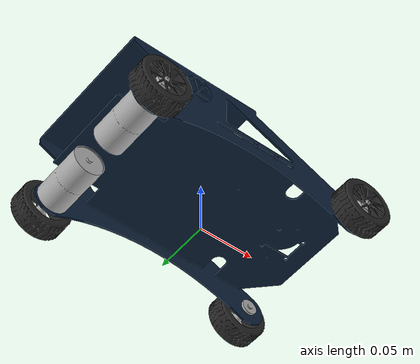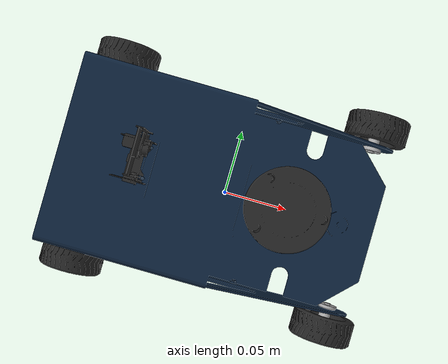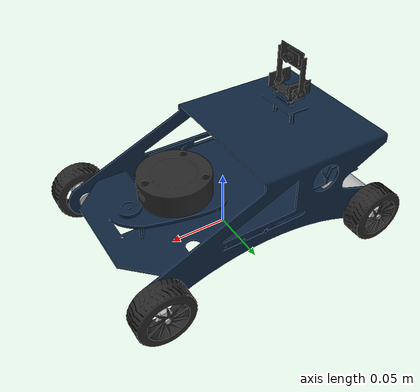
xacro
<?xml version="1.0" ?>
<robot name="mach1" xmlns:xacro="http://www.ros.org/wiki/xacro">

<xacro:include filename="$(find mach1_simulation)/urdf/materials.xacro" />
<xacro:include filename="$(find mach1_simulation)/urdf/mach1.trans" />
<xacro:include filename="$(find mach1_simulation)/urdf/mach1.gazebo" />
<link name="base_link">
  <inertial>
    <origin xyz="-0.01257059513659561 -6.749337095876954e-06 0.05456277365767092" rpy="0 0 0"/>
    <mass value="0.27796549982773394"/>
    <inertia ixx="0.0007" iyy="0.001225" izz="0.001622" ixy="2e-06" iyz="-1e-06" ixz="0.000161"/>
  </inertial>
  <visual>
    <origin xyz="0 0 0" rpy="0 0 0"/>
    <geometry>
      <mesh filename="package://mach1_simulation/meshes/base_link.stl" scale="0.001 0.001 0.001"/>
    </geometry>
    <material name="bright_blue"/>
  </visual>
  <collision>
    <origin xyz="0 0 0" rpy="0 0 0"/>
    <geometry>
      <mesh filename="package://mach1_simulation/meshes/base_link.stl" scale="0.001 0.001 0.001"/>
    </geometry>
  </collision>
</link>

<link name="left_motor_link_1">
  <inertial>
    <origin xyz="-1.1673019370550541e-08 -0.023515437461306535 4.727200079990279e-08" rpy="0 0 0"/>
    <mass value="0.26354923062867747"/>
    <inertia ixx="8.2e-05" iyy="2.6e-05" izz="8.2e-05" ixy="0.0" iyz="-0.0" ixz="-0.0"/>
  </inertial>
  <visual>
    <origin xyz="0.098425 -0.063437 -0.022977" rpy="0 0 0"/>
    <geometry>
      <mesh filename="package://mach1_simulation/meshes/left_motor_link_1.stl" scale="0.001 0.001 0.001"/>
    </geometry>
    <material name="silver"/>
  </visual>
  <collision>
    <origin xyz="0.098425 -0.063437 -0.022977" rpy="0 0 0"/>
    <geometry>
      <mesh filename="package://mach1_simulation/meshes/left_motor_link_1.stl" scale="0.001 0.001 0.001"/>
    </geometry>
  </collision>
</link>

<link name="back_left_wheel_link_1">
  <inertial>
    <origin xyz="-5.8024360941044684e-08 -0.007668076255200537 1.058822429039763e-09" rpy="0 0 0"/>
    <mass value="0.022862762421987773"/>
    <inertia ixx="5e-06" iyy="9e-06" izz="5e-06" ixy="-0.0" iyz="-0.0" ixz="-0.0"/>
  </inertial>
  <visual>
    <origin xyz="0.098425 -0.085609 -0.022977" rpy="0 0 0"/>
    <geometry>
      <mesh filename="package://mach1_simulation/meshes/back_left_wheel_link_1.stl" scale="0.001 0.001 0.001"/>
    </geometry>
    <material name="light_black"/>
  </visual>
  <collision>
    <origin xyz="0.098425 -0.085609 -0.022977" rpy="0 0 0"/>
    <geometry>
      <mesh filename="package://mach1_simulation/meshes/back_left_wheel_link_1.stl" scale="0.001 0.001 0.001"/>
    </geometry>
  </collision>
</link>

<link name="right_motor_link_1">
  <inertial>
    <origin xyz="-1.1673019370550541e-08 0.025102437461306568 4.727200079990279e-08" rpy="0 0 0"/>
    <mass value="0.26354923062867747"/>
    <inertia ixx="8.2e-05" iyy="2.6e-05" izz="8.2e-05" ixy="-0.0" iyz="0.0" ixz="-0.0"/>
  </inertial>
  <visual>
    <origin xyz="0.098425 0.065024 -0.022977" rpy="0 0 0"/>
    <geometry>
      <mesh filename="package://mach1_simulation/meshes/right_motor_link_1.stl" scale="0.001 0.001 0.001"/>
    </geometry>
    <material name="silver"/>
  </visual>
  <collision>
    <origin xyz="0.098425 0.065024 -0.022977" rpy="0 0 0"/>
    <geometry>
      <mesh filename="package://mach1_simulation/meshes/right_motor_link_1.stl" scale="0.001 0.001 0.001"/>
    </geometry>
  </collision>
</link>

<link name="back_right_wheel_link_1">
  <inertial>
    <origin xyz="-4.022446584150963e-09 0.007668057793591393 2.022708084359337e-09" rpy="0 0 0"/>
    <mass value="0.02286234064013841"/>
    <inertia ixx="5e-06" iyy="9e-06" izz="5e-06" ixy="-0.0" iyz="0.0" ixz="-0.0"/>
  </inertial>
  <visual>
    <origin xyz="0.098425 0.085609 -0.022977" rpy="0 0 0"/>
    <geometry>
      <mesh filename="package://mach1_simulation/meshes/back_right_wheel_link_1.stl" scale="0.001 0.001 0.001"/>
    </geometry>
    <material name="light_black"/>
  </visual>
  <collision>
    <origin xyz="0.098425 0.085609 -0.022977" rpy="0 0 0"/>
    <geometry>
      <mesh filename="package://mach1_simulation/meshes/back_right_wheel_link_1.stl" scale="0.001 0.001 0.001"/>
    </geometry>
  </collision>
</link>

<link name="left_axel_link_1">
  <inertial>
    <origin xyz="2.0695760315214695e-07 0.00912067298665084 8.381127491671747e-07" rpy="0 0 0"/>
    <mass value="0.014864944426974978"/>
    <inertia ixx="1e-06" iyy="0.0" izz="1e-06" ixy="0.0" iyz="0.0" ixz="0.0"/>
  </inertial>
  <visual>
    <origin xyz="-0.098425 -0.063437 -0.022977" rpy="0 0 0"/>
    <geometry>
      <mesh filename="package://mach1_simulation/meshes/left_axel_link_1.stl" scale="0.001 0.001 0.001"/>
    </geometry>
    <material name="silver"/>
  </visual>
  <collision>
    <origin xyz="-0.098425 -0.063437 -0.022977" rpy="0 0 0"/>
    <geometry>
      <mesh filename="package://mach1_simulation/meshes/left_axel_link_1.stl" scale="0.001 0.001 0.001"/>
    </geometry>
  </collision>
</link>

<link name="front_left_wheel_link_1">
  <inertial>
    <origin xyz="-4.520254250073297e-08 -0.007668062103570364 -2.671110208019023e-08" rpy="0 0 0"/>
    <mass value="0.02286192416725644"/>
    <inertia ixx="5e-06" iyy="9e-06" izz="5e-06" ixy="-0.0" iyz="-0.0" ixz="0.0"/>
  </inertial>
  <visual>
    <origin xyz="-0.098425 -0.085609 -0.022977" rpy="0 0 0"/>
    <geometry>
      <mesh filename="package://mach1_simulation/meshes/front_left_wheel_link_1.stl" scale="0.001 0.001 0.001"/>
    </geometry>
    <material name="light_black"/>
  </visual>
  <collision>
    <origin xyz="-0.098425 -0.085609 -0.022977" rpy="0 0 0"/>
    <geometry>
      <mesh filename="package://mach1_simulation/meshes/front_left_wheel_link_1.stl" scale="0.001 0.001 0.001"/>
    </geometry>
  </collision>
</link>

<link name="right_axel_link_1">
  <inertial>
    <origin xyz="2.0695760313826916e-07 -0.009120672986650827 8.381127491637053e-07" rpy="0 0 0"/>
    <mass value="0.014864944426974976"/>
    <inertia ixx="1e-06" iyy="0.0" izz="1e-06" ixy="-0.0" iyz="-0.0" ixz="0.0"/>
  </inertial>
  <visual>
    <origin xyz="-0.098425 0.063437 -0.022977" rpy="0 0 0"/>
    <geometry>
      <mesh filename="package://mach1_simulation/meshes/right_axel_link_1.stl" scale="0.001 0.001 0.001"/>
    </geometry>
    <material name="silver"/>
  </visual>
  <collision>
    <origin xyz="-0.098425 0.063437 -0.022977" rpy="0 0 0"/>
    <geometry>
      <mesh filename="package://mach1_simulation/meshes/right_axel_link_1.stl" scale="0.001 0.001 0.001"/>
    </geometry>
  </collision>
</link>

<link name="front_right_wheel_link_1">
  <inertial>
    <origin xyz="-4.815559548343451e-09 0.00766808105796124 -5.901404989683279e-10" rpy="0 0 0"/>
    <mass value="0.02286228381417235"/>
    <inertia ixx="5e-06" iyy="9e-06" izz="5e-06" ixy="-0.0" iyz="-0.0" ixz="0.0"/>
  </inertial>
  <visual>
    <origin xyz="-0.098425 0.085609 -0.022977" rpy="0 0 0"/>
    <geometry>
      <mesh filename="package://mach1_simulation/meshes/front_right_wheel_link_1.stl" scale="0.001 0.001 0.001"/>
    </geometry>
    <material name="light_black"/>
  </visual>
  <collision>
    <origin xyz="-0.098425 0.085609 -0.022977" rpy="0 0 0"/>
    <geometry>
      <mesh filename="package://mach1_simulation/meshes/front_right_wheel_link_1.stl" scale="0.001 0.001 0.001"/>
    </geometry>
  </collision>
</link>

<link name="lidar_link_1">
  <inertial>
    <origin xyz="-2.6784463419346483e-05 -1.8448607882002178e-06 0.00826050971110421" rpy="0 0 0"/>
    <mass value="0.08969534212948989"/>
    <inertia ixx="2.4e-05" iyy="2.4e-05" izz="4e-05" ixy="0.0" iyz="0.0" ixz="0.0"/>
  </inertial>
  <visual>
    <origin xyz="-0.044673 -0.000242 -0.052698" rpy="0 0 0"/>
    <geometry>
      <mesh filename="package://mach1_simulation/meshes/lidar_link_1.stl" scale="0.001 0.001 0.001"/>
    </geometry>
    <material name="light_black"/>
  </visual>
  <collision>
    <origin xyz="-0.044673 -0.000242 -0.052698" rpy="0 0 0"/>
    <geometry>
      <mesh filename="package://mach1_simulation/meshes/lidar_link_1.stl" scale="0.001 0.001 0.001"/>
    </geometry>
  </collision>
</link>

<link name="camera_link_1">
  <inertial>
    <origin xyz="0.0017247609899610633 -4.844296107829604e-08 -4.908169510264848e-07" rpy="0 0 0"/>
    <mass value="0.0001446922327064572"/>
    <inertia ixx="0.0" iyy="0.0" izz="0.0" ixy="0.0" iyz="-0.0" ixz="0.0"/>
  </inertial>
  <visual>
    <origin xyz="0.052708 -0.010469 -0.148286" rpy="0 0 0"/>
    <geometry>
      <mesh filename="package://mach1_simulation/meshes/camera_link_1.stl" scale="0.001 0.001 0.001"/>
    </geometry>
    <material name="light_black"/>
  </visual>
  <collision>
    <origin xyz="0.052708 -0.010469 -0.148286" rpy="0 0 0"/>
    <geometry>
      <mesh filename="package://mach1_simulation/meshes/camera_link_1.stl" scale="0.001 0.001 0.001"/>
    </geometry>
  </collision>
</link>

<link name="camera_servo_link_1">
  <inertial>
    <origin xyz="7.875210781579933e-05 -0.013216489176342328 0.020116135219434145" rpy="0 0 0"/>
    <mass value="0.0008288338046232635"/>
    <inertia ixx="0.0" iyy="0.0" izz="0.0" ixy="-0.0" iyz="-0.0" ixz="-0.0"/>
  </inertial>
  <visual>
    <origin xyz="0.055848 -0.022042 -0.120843" rpy="0 0 0"/>
    <geometry>
      <mesh filename="package://mach1_simulation/meshes/camera_servo_link_1.stl" scale="0.001 0.001 0.001"/>
    </geometry>
    <material name="light_black"/>
  </visual>
  <collision>
    <origin xyz="0.055848 -0.022042 -0.120843" rpy="0 0 0"/>
    <geometry>
      <mesh filename="package://mach1_simulation/meshes/camera_servo_link_1.stl" scale="0.001 0.001 0.001"/>
    </geometry>
  </collision>
</link>

<link name="servo_connection_link_1">
  <inertial>
    <origin xyz="1.4196507928943003e-06 0.005593295972367044 -1.0830995605948246e-07" rpy="0 0 0"/>
    <mass value="0.00026402510298988033"/>
    <inertia ixx="0.0" iyy="0.0" izz="0.0" ixy="-0.0" iyz="-0.0" ixz="-0.0"/>
  </inertial>
  <visual>
    <origin xyz="0.055848 -0.010201 -0.120843" rpy="0 0 0"/>
    <geometry>
      <mesh filename="package://mach1_simulation/meshes/servo_connection_link_1.stl" scale="0.001 0.001 0.001"/>
    </geometry>
    <material name="light_black"/>
  </visual>
  <collision>
    <origin xyz="0.055848 -0.010201 -0.120843" rpy="0 0 0"/>
    <geometry>
      <mesh filename="package://mach1_simulation/meshes/servo_connection_link_1.stl" scale="0.001 0.001 0.001"/>
    </geometry>
  </collision>
</link>

<link name="led_servo_link_1">
  <inertial>
    <origin xyz="-0.0006249344811125879 0.004651981950430245 0.006942682838997669" rpy="0 0 0"/>
    <mass value="0.0018204441194599923"/>
    <inertia ixx="0.0" iyy="0.0" izz="0.0" ixy="0.0" iyz="-0.0" ixz="0.0"/>
  </inertial>
  <visual>
    <origin xyz="0.059026 -0.004197 -0.111884" rpy="0 0 0"/>
    <geometry>
      <mesh filename="package://mach1_simulation/meshes/led_servo_link_1.stl" scale="0.001 0.001 0.001"/>
    </geometry>
    <material name="light_black"/>
  </visual>
  <collision>
    <origin xyz="0.059026 -0.004197 -0.111884" rpy="0 0 0"/>
    <geometry>
      <mesh filename="package://mach1_simulation/meshes/led_servo_link_1.stl" scale="0.001 0.001 0.001"/>
    </geometry>
  </collision>
</link>

<link name="right_led_bulb_link_1">
  <inertial>
    <origin xyz="0.0015254212710200526 -2.6323828997316945e-07 -5.000000026095242e-07" rpy="0 0 0"/>
    <mass value="1.2830654939896124e-05"/>
    <inertia ixx="0.0" iyy="0.0" izz="0.0" ixy="-0.0" iyz="0.0" ixz="0.0"/>
  </inertial>
  <visual>
    <origin xyz="0.053914 0.005666 -0.112237" rpy="0 0 0"/>
    <geometry>
      <mesh filename="package://mach1_simulation/meshes/right_led_bulb_link_1.stl" scale="0.001 0.001 0.001"/>
    </geometry>
    <material name="clear"/>
  </visual>
  <collision>
    <origin xyz="0.053914 0.005666 -0.112237" rpy="0 0 0"/>
    <geometry>
      <mesh filename="package://mach1_simulation/meshes/right_led_bulb_link_1.stl" scale="0.001 0.001 0.001"/>
    </geometry>
  </collision>
</link>

<link name="left_led_bulb_link_1">
  <inertial>
    <origin xyz="0.001525449171436842 1.7538595697627613e-07 -5.000000021654349e-07" rpy="0 0 0"/>
    <mass value="1.2836334343820447e-05"/>
    <inertia ixx="0.0" iyy="0.0" izz="0.0" ixy="-0.0" iyz="0.0" ixz="0.0"/>
  </inertial>
  <visual>
    <origin xyz="0.053914 -0.014193 -0.112237" rpy="0 0 0"/>
    <geometry>
      <mesh filename="package://mach1_simulation/meshes/left_led_bulb_link_1.stl" scale="0.001 0.001 0.001"/>
    </geometry>
    <material name="clear"/>
  </visual>
  <collision>
    <origin xyz="0.053914 -0.014193 -0.112237" rpy="0 0 0"/>
    <geometry>
      <mesh filename="package://mach1_simulation/meshes/left_led_bulb_link_1.stl" scale="0.001 0.001 0.001"/>
    </geometry>
  </collision>
</link>

<joint name="left_motor_joint" type="fixed">
  <origin xyz="-0.098425 0.063437 0.022977" rpy="0 0 0"/>
  <parent link="base_link"/>
  <child link="left_motor_link_1"/>
</joint>

<joint name="back_left_wheel_joint" type="continuous">
  <origin xyz="0.0 0.022172 0.0" rpy="0 0 0"/>
  <parent link="left_motor_link_1"/>
  <child link="back_left_wheel_link_1"/>
  <axis xyz="0.0 1.0 0.0"/>
</joint>

<joint name="right_motor_joint" type="fixed">
  <origin xyz="-0.098425 -0.065024 0.022977" rpy="0 0 0"/>
  <parent link="base_link"/>
  <child link="right_motor_link_1"/>
</joint>

<joint name="back_right_wheel_joint" type="continuous">
  <origin xyz="0.0 -0.020585 0.0" rpy="0 0 0"/>
  <parent link="right_motor_link_1"/>
  <child link="back_right_wheel_link_1"/>
  <axis xyz="0.0 1.0 0.0"/>
</joint>

<joint name="left_axel_joint" type="fixed">
  <origin xyz="0.098425 0.063437 0.022977" rpy="0 0 0"/>
  <parent link="base_link"/>
  <child link="left_axel_link_1"/>
</joint>

<joint name="front_left_wheel_joint" type="continuous">
  <origin xyz="0.0 0.022172 0.0" rpy="0 0 0"/>
  <parent link="left_axel_link_1"/>
  <child link="front_left_wheel_link_1"/>
  <axis xyz="0.0 -1.0 0.0"/>
</joint>

<joint name="right_axel_joint" type="fixed">
  <origin xyz="0.098425 -0.063437 0.022977" rpy="0 0 0"/>
  <parent link="base_link"/>
  <child link="right_axel_link_1"/>
</joint>

<joint name="front_right_wheel_joint" type="continuous">
  <origin xyz="0.0 -0.022172 0.0" rpy="0 0 0"/>
  <parent link="right_axel_link_1"/>
  <child link="front_right_wheel_link_1"/>
  <axis xyz="0.0 -1.0 0.0"/>
</joint>

<joint name="lidar_link_joint" type="fixed">
  <origin xyz="0.044673 0.000242 0.052698" rpy="0 0 0"/>
  <parent link="base_link"/>
  <child link="lidar_link_1"/>
</joint>

<joint name="camera_joint" type="fixed">
  <origin xyz="0.00314 -0.011573 0.027443" rpy="0 0 0"/>
  <parent link="camera_servo_link_1"/>
  <child link="camera_link_1"/>
</joint>

<joint name="servo_connection_to_camera_joint" type="revolute">
  <origin xyz="0.0 0.011841 0.0" rpy="0 0 0"/>
  <parent link="servo_connection_link_1"/>
  <child link="camera_servo_link_1"/>
  <axis xyz="0.0 -1.0 -0.0"/>
  <limit upper="1.134464" lower="-1.134464" effort="100" velocity="100"/>
</joint>

<joint name="led_to_servo_connection_joint" type="fixed">
  <origin xyz="0.003178 0.006004 0.008959" rpy="0 0 0"/>
  <parent link="led_servo_link_1"/>
  <child link="servo_connection_link_1"/>
</joint>

<joint name="led_servo_joint" type="revolute">
  <origin xyz="-0.059026 0.004197 0.111884" rpy="0 0 0"/>
  <parent link="base_link"/>
  <child link="led_servo_link_1"/>
  <axis xyz="0.0 0.0 1.0"/>
  <limit upper="1.570796" lower="-1.570796" effort="100" velocity="100"/>
</joint>

<joint name="right_led_bulb_joint" type="fixed">
  <origin xyz="0.005112 -0.009863 0.000353" rpy="0 0 0"/>
  <parent link="led_servo_link_1"/>
  <child link="right_led_bulb_link_1"/>
</joint>

<joint name="left_led_bulb_joint" type="fixed">
  <origin xyz="0.005112 0.009996 0.000353" rpy="0 0 0"/>
  <parent link="led_servo_link_1"/>
  <child link="left_led_bulb_link_1"/>
</joint>

</robot>

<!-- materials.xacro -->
<robot name="mach1" xmlns:xacro="http://www.ros.org/wiki/xacro" >

<material name="bright_blue">
  <color rgba="0.053 0.139 0.238 1.000"/>
</material>

<material name="clear">
  <color rgba="0.750 0.750 0.750 0.2"/>
</material>

<material name="silver">
  <color rgba="0.700 0.700 0.700 1.000"/>
</material>

<material name="light_black">
  <color rgba="0.150 0.150 0.150 1.000"/>
</material>

</robot>

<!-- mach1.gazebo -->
<robot name="mach1" xmlns:xacro="http://www.ros.org/wiki/xacro" >

<xacro:property name="SkyBlue"          value="Gazebo/SkyBlue"/>
<xacro:property name="Grey"           value="Gazebo/Grey"/>
<xacro:property name="Black"            value="Gazebo/Black"/>
<xacro:property name="GreyTransparent"  value="Gazebo/GreyTransparent"/>

<gazebo>
  <plugin name="control" filename="libgazebo_ros_control.so"/>
</gazebo>
<gazebo reference="base_link">
  <material>${SkyBlue}</material>
  <mu1>0.2</mu1>
  <mu2>0.2</mu2>
  <selfCollide>true</selfCollide>
  <gravity>true</gravity>
</gazebo>

<gazebo reference="left_motor_link_1">
  <material>${Grey}</material>
  <mu1>0.2</mu1>
  <mu2>0.2</mu2>
  <selfCollide>true</selfCollide>
</gazebo>

<gazebo reference="back_left_wheel_link_1">
  <material>${Black}</material>
  <mu1>0.6</mu1>
  <mu2>0.6</mu2>
  <selfCollide>true</selfCollide>
</gazebo>

<gazebo reference="right_motor_link_1">
  <material>${Grey}</material>
  <mu1>100</mu1>
  <mu2>100</mu2>
  <selfCollide>true</selfCollide>
</gazebo>

<gazebo reference="back_right_wheel_link_1">
  <material>${Black}</material>
  <mu1>0.6</mu1>
  <mu2>0.6</mu2>
  <selfCollide>true</selfCollide>
</gazebo>

<gazebo reference="left_axel_link_1">
  <material>${Grey}</material>
  <mu1>100</mu1>
  <mu2>100</mu2>
  <selfCollide>true</selfCollide>
</gazebo>

<gazebo reference="front_left_wheel_link_1">
  <material>${Black}</material>
  <mu1>0.05</mu1>
  <mu2>0.05</mu2>
  <selfCollide>true</selfCollide>
</gazebo>

<gazebo reference="right_axel_link_1">
  <material>${Grey}</material>
  <mu1>100</mu1>
  <mu2>100</mu2>
  <selfCollide>true</selfCollide>
</gazebo>

<gazebo reference="front_right_wheel_link_1">
  <material>${Black}</material>
  <mu1>0.05</mu1>
  <mu2>0.05</mu2>
  <selfCollide>true</selfCollide>
</gazebo>

<gazebo reference="lidar_link_1">
  <material>${Black}</material>
  <mu1>100</mu1>
  <mu2>100</mu2>
  <selfCollide>true</selfCollide>
</gazebo>

<gazebo reference="camera_link_1">
  <material>${Black}</material>
  <mu1>100</mu1>
  <mu2>100</mu2>
  <selfCollide>true</selfCollide>
</gazebo>

<gazebo reference="camera_servo_link_1">
  <material>${Black}</material>
  <mu1>0.2</mu1>
  <mu2>0.2</mu2>
  <selfCollide>true</selfCollide>
</gazebo>

<gazebo reference="servo_connection_link_1">
  <material>${Black}</material>
  <mu1>0.2</mu1>
  <mu2>0.2</mu2>
  <selfCollide>true</selfCollide>
</gazebo>

<gazebo reference="led_servo_link_1">
  <material>${Black}</material>
  <mu1>0.2</mu1>
  <mu2>0.2</mu2>
  <selfCollide>true</selfCollide>
</gazebo>

<gazebo reference="right_led_bulb_link_1">
  <material>${GreyTransparent}</material>
  <mu1>100</mu1>
  <mu2>100</mu2>
  <selfCollide>true</selfCollide>
</gazebo>

<gazebo reference="left_led_bulb_link_1">
  <material>${GreyTransparent}</material>
  <mu1>100</mu1>
  <mu2>100</mu2>
  <selfCollide>true</selfCollide>
</gazebo>

<!-- Camera -->
<gazebo reference="camera_link_1">
  <sensor type="camera" name="camera1">
    <update_rate>30.0</update_rate>
    <camera name="head">
      <horizontal_fov>1.3962634</horizontal_fov>
      <image>
        <width>800</width>
        <height>800</height>
        <format>R8G8B8</format>
      </image>
      <clip>
        <near>0.02</near>
        <far>300</far>
      </clip>
      <noise>
        <type>gaussian</type>
        <!-- Noise is sampled independently per pixel on each frame.
              That pixel's noise value is added to each of its color
              channels, which at that point lie in the range [0,1]. -->
        <mean>0.0</mean>
        <stddev>0.007</stddev>
      </noise>
    </camera>
    <plugin name="camera_controller" filename="libgazebo_ros_camera.so">
      <alwaysOn>true</alwaysOn>
      <updateRate>0.0</updateRate>
      <cameraName>/camera_link_1</cameraName>
      <imageTopicName>image_raw</imageTopicName>
      <cameraInfoTopicName>camera_info</cameraInfoTopicName>
      <frameName>camera_link_1</frameName>
      <hackBaseline>0.07</hackBaseline>
      <distortionK1>0.0</distortionK1>
      <distortionK2>0.0</distortionK2>
      <distortionK3>0.0</distortionK3>
      <distortionT1>0.0</distortionT1>
      <distortionT2>0.0</distortionT2>
    </plugin>
  </sensor>
</gazebo>

<!--LiDAR -->
<gazebo reference="lidar_link_1">
  <sensor type="gpu_ray" name="head_hokuyo_sensor">
    <pose>0 0 0 0 0 0</pose>
    <visualize>false</visualize>
    <update_rate>40</update_rate>
    <ray>
      <scan>
        <horizontal>
          <samples>720</samples>
          <resolution>1</resolution>
          <min_angle>-1.570796</min_angle>
          <max_angle>1.570796</max_angle>
        </horizontal>
      </scan>
      <range>
        <min>0.10</min>
        <max>30.0</max>
        <resolution>0.01</resolution>
      </range>
      <noise>
        <type>gaussian</type>
        <mean>0.0</mean>
        <stddev>0.01</stddev>
      </noise>
    </ray>
    <plugin name="gazebo_ros_head_hokuyo_controller" filename="libgazebo_ros_gpu_laser.so">
      <topicName>/scan</topicName>
      <frameName>lidar_link_1</frameName>
    </plugin>
  </sensor>
</gazebo>

<!-- Skid Steering Drive -->
<gazebo>
  <plugin name="skid_steer_drive_controller" filename="libgazebo_ros_skid_steer_drive.so">
    <updateRate>100.0</updateRate>
    <robotNamespace>/</robotNamespace>
    <leftFrontJoint>front_left_wheel_joint</leftFrontJoint>
    <rightFrontJoint>front_right_wheel_joint</rightFrontJoint>
    <leftRearJoint>back_left_wheel_joint</leftRearJoint>
    <rightRearJoint>back_right_wheel_joint</rightRearJoint>
    <wheelSeparation>0.155</wheelSeparation>
    <wheelDiameter>0.0467</wheelDiameter>
    <robotBaseFrame>base_link</robotBaseFrame>
    <torque>50</torque>
    <topicName>cmd_vel</topicName>
    <broadcastTF>false</broadcastTF>
  </plugin>
</gazebo>

</robot>
